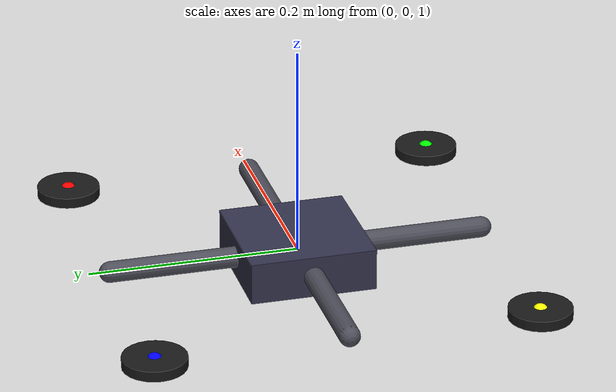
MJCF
<mujoco model="quadcopter">
  <compiler angle="degree" inertiafromgeom="true"/>
  <option timestep="0.01" gravity="0 0 -9.81" integrator="RK4"/>

  <default>
    <geom contype="0" conaffinity="0" rgba="0.2 0.2 0.25 1"/>
    <joint damping="0.02"/>
  </default>

  <worldbody>
    <light pos="0 0 3" dir="0 0 -1" diffuse="1 1 1"/>
    <geom name="ground" type="plane" size="5 5 0.1" rgba="0.95 0.95 0.95 1"/>

    <body name="drone" pos="0 0 1.0">
      <freejoint name="drone_free"/>
      <geom name="body" type="box" size="0.06 0.06 0.02" mass="0.8" rgba="0.2 0.2 0.3 1"/>
      <geom name="arm_x" type="capsule" fromto="-0.18 0 0 0.18 0 0" size="0.01" mass="0.1" rgba="0.3 0.3 0.35 1"/>
      <geom name="arm_y" type="capsule" fromto="0 -0.18 0 0 0.18 0" size="0.01" mass="0.1" rgba="0.3 0.3 0.35 1"/>

      <geom name="rotor_fl_geom" type="cylinder" pos="0.18 0.18 0" size="0.03 0.005" mass="0.05" rgba="0.1 0.1 0.1 1"/>
      <geom name="rotor_fr_geom" type="cylinder" pos="0.18 -0.18 0" size="0.03 0.005" mass="0.05" rgba="0.1 0.1 0.1 1"/>
      <geom name="rotor_bl_geom" type="cylinder" pos="-0.18 0.18 0" size="0.03 0.005" mass="0.05" rgba="0.1 0.1 0.1 1"/>
      <geom name="rotor_br_geom" type="cylinder" pos="-0.18 -0.18 0" size="0.03 0.005" mass="0.05" rgba="0.1 0.1 0.1 1"/>

      <site name="rotor_fl" pos="0.18 0.18 0" size="0.008" rgba="1 0 0 1"/>
      <site name="rotor_fr" pos="0.18 -0.18 0" size="0.008" rgba="0 1 0 1"/>
      <site name="rotor_bl" pos="-0.18 0.18 0" size="0.008" rgba="0 0 1 1"/>
      <site name="rotor_br" pos="-0.18 -0.18 0" size="0.008" rgba="1 1 0 1"/>
      <site name="center" pos="0 0 0" size="0.005" rgba="0 0 1 1"/>
    </body>
  </worldbody>

  <actuator>
    <general name="act_fl" site="rotor_fl" gear="0 0 1 0 0 0.02" ctrlrange="0 15" ctrllimited="true"/>
    <general name="act_fr" site="rotor_fr" gear="0 0 1 0 0 -0.02" ctrlrange="0 15" ctrllimited="true"/>
    <general name="act_bl" site="rotor_bl" gear="0 0 1 0 0 -0.02" ctrlrange="0 15" ctrllimited="true"/>
    <general name="act_br" site="rotor_br" gear="0 0 1 0 0 0.02" ctrlrange="0 15" ctrllimited="true"/>
  </actuator>
</mujoco>
